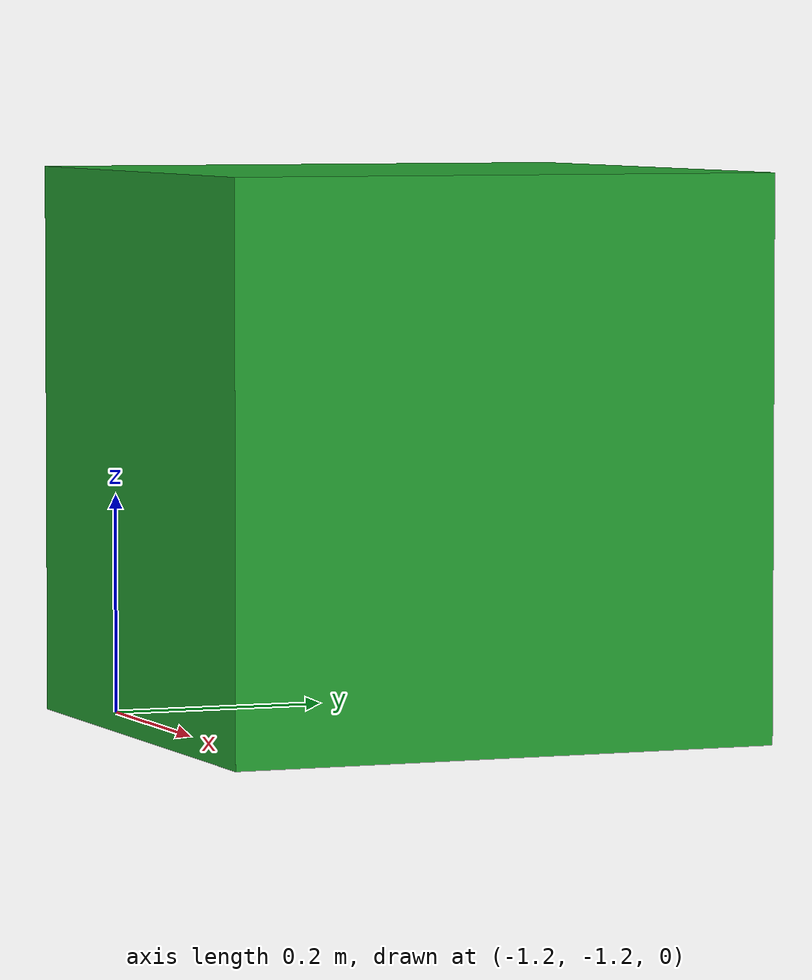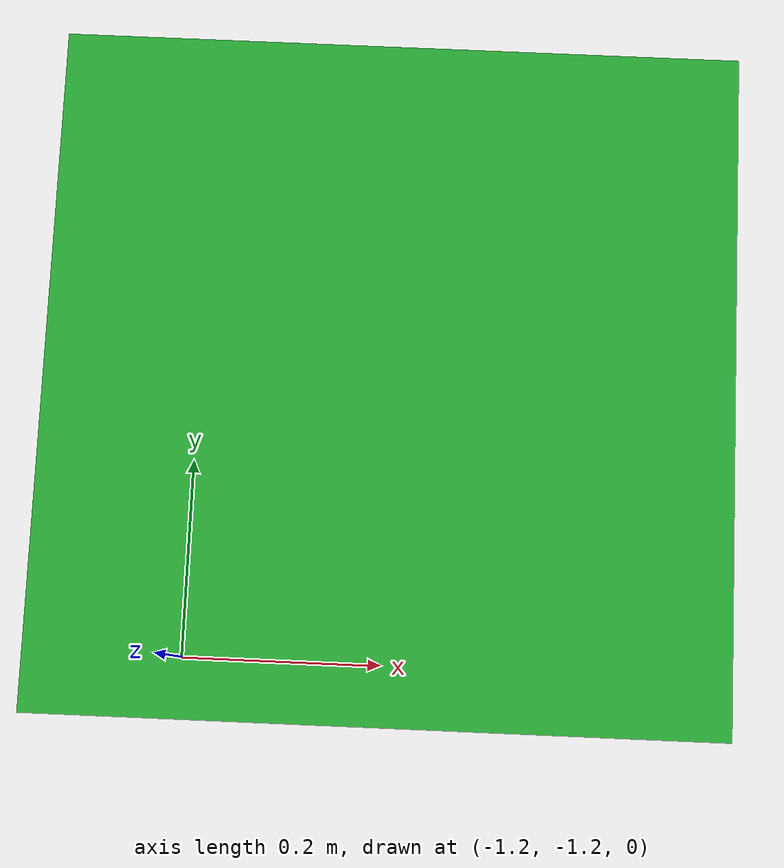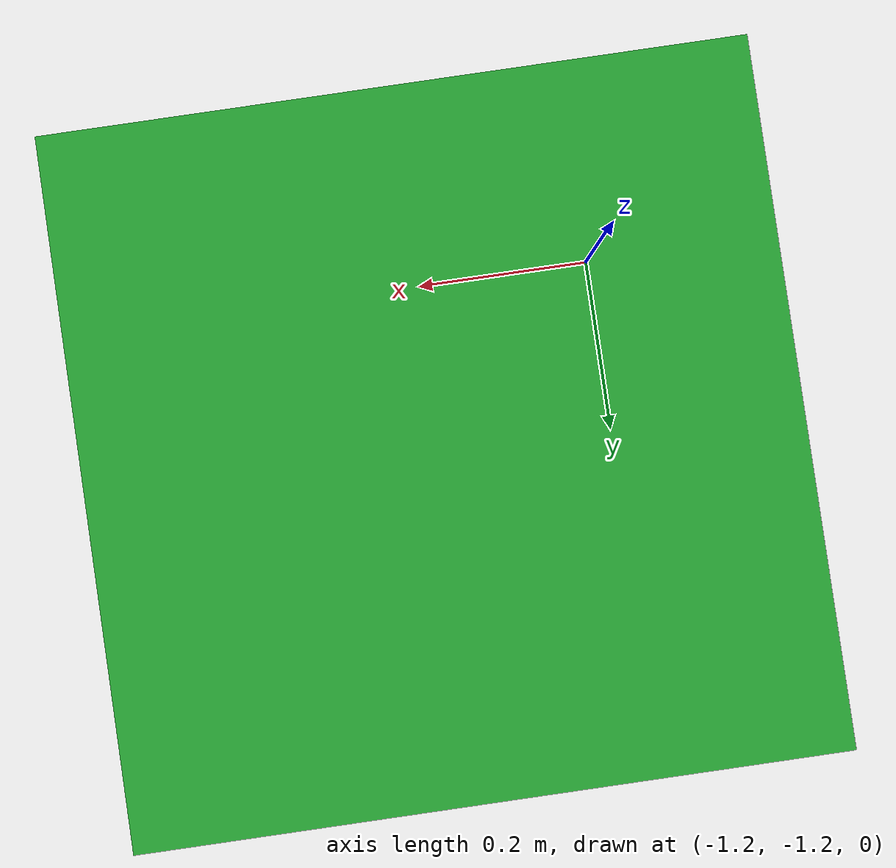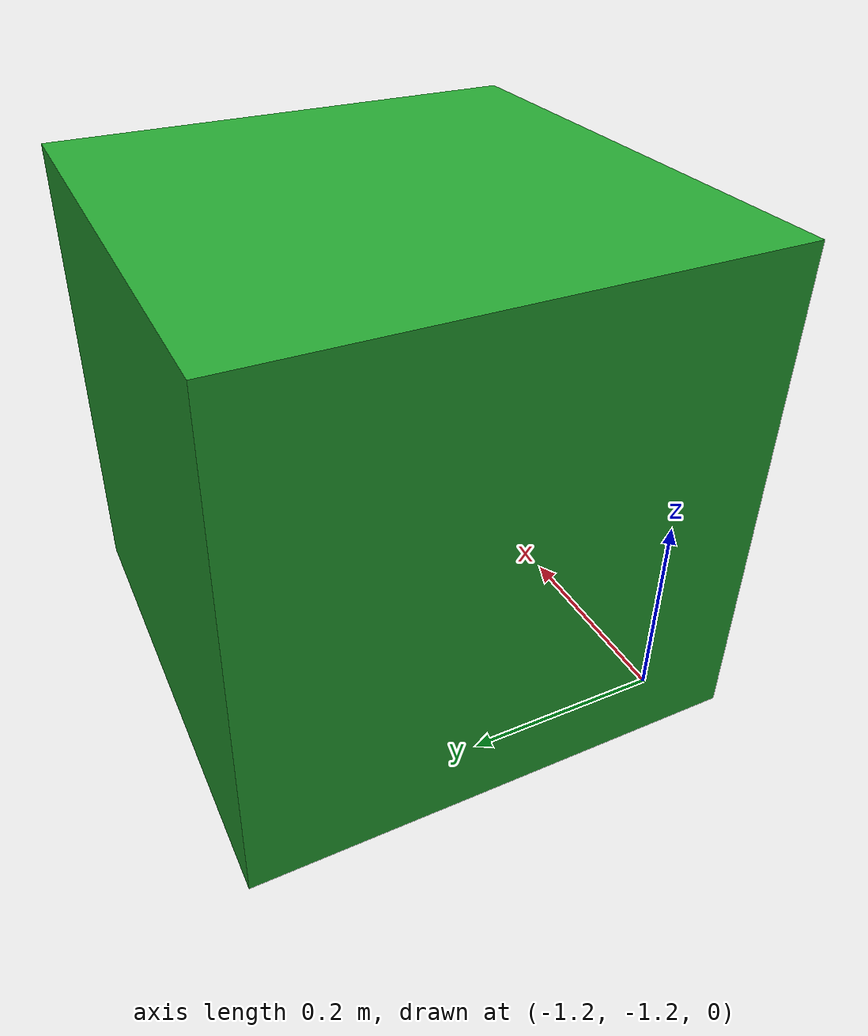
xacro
<?xml version="1.0"?>
<robot xmlns:xacro="http://www.ros.org/wiki/xacro">
    <link name="greenbox">
    </link>

    <joint name="greenbox_joint1" type="fixed">
        <parent link="greenbox"/>
        <child link="greenbox_link1"/>
        <origin xyz="-1 -1 0.25"/>
    </joint>

    <link name="greenbox_link1">
        <visual>
            <origin xyz="0 0 0"/>
            <geometry>
                <box size="0.5 0.5 0.5"/>
            </geometry>
            <material name="green"/>
        </visual>
        <collision>
            <origin xyz="0 0 0" rpy="0 0 0"/>
            <geometry>
                <box size="0.5 0.5 0.5"/>
            </geometry>
        </collision>
        <xacro:inertial_box mass="1" x="0" y="0" z="0">
            <origin xyz="-1 -1 0.25" rpy="0 0 0"/>
        </xacro:inertial_box>
    </link>
</robot>
